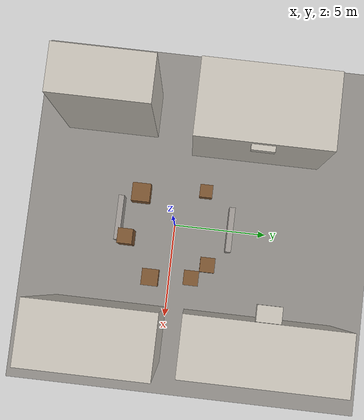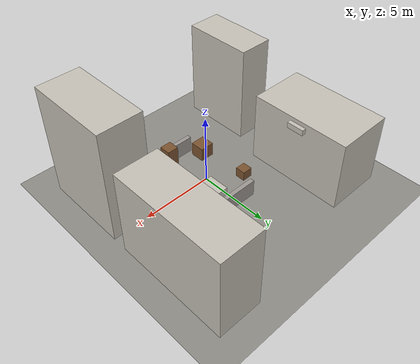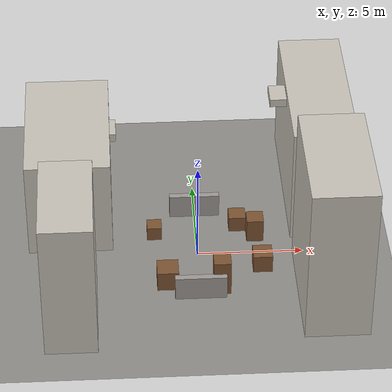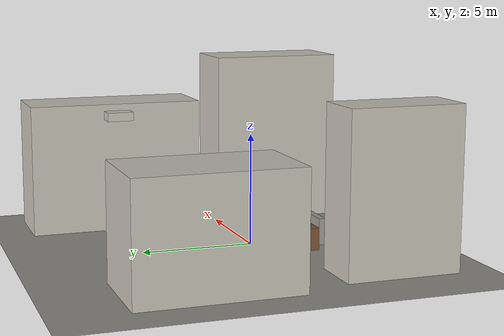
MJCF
<mujoco model="scene_urban">

  <include file="common_assets.xml"/>

  <option gravity="0 0 -9.81"/>

  <visual>
    <headlight ambient="0.3 0.3 0.32" diffuse="0.45 0.45 0.42" specular="0.1 0.1 0.1"/>
    <rgba haze="0.55 0.55 0.58 1"/>
  </visual>

  <worldbody>
    <light name="key_light" pos="5 -4 7" dir="-0.4 0.35 -1" diffuse="0.75 0.72 0.65" specular="0.2 0.2 0.2" castshadow="true"/>
    <light name="fill_light" pos="-5 3 6" dir="0.4 -0.25 -1" diffuse="0.28 0.28 0.3" castshadow="false"/>

    <geom name="street_floor" type="plane" size="30 30 0.1" material="mat_concrete" pos="0 0 0"/>

    <!-- Building-like blocks lining two rough "street" edges, closer spacing
         than warehouse walls -> real occlusion risk during following -->
    <geom name="building_01" type="box" size="1.5 4 3" pos="6 5 3" material="mat_wall"/>
    <geom name="building_02" type="box" size="1.5 3 4" pos="6 -3 4" material="mat_wall"/>
    <geom name="building_03" type="box" size="2 3.5 2.5" pos="-6 4 2.5" material="mat_wall"/>
    <geom name="building_04" type="box" size="1.2 2.5 3.5" pos="-6 -4 3.5" material="mat_wall"/>

    <!-- Dense low/mid clutter between the "buildings": deliberately closer
         together than the other 2 scenes -->
    <geom name="crate_01" type="box" size="0.4 0.4 0.4" pos="2 2 0.4" material="mat_crate"/>
    <geom name="crate_02" type="box" size="0.4 0.4 0.6" pos="2.8 1.2 0.6" material="mat_crate"/>
    <geom name="crate_03" type="box" size="0.35 0.35 0.35" pos="-2 1.5 0.35" material="mat_crate"/>
    <geom name="crate_04" type="box" size="0.5 0.5 0.5" pos="-1.5 -2 0.5" material="mat_crate"/>
    <geom name="crate_05" type="box" size="0.4 0.4 0.9" pos="1 -2.5 0.9" material="mat_crate"/>
    <geom name="crate_06" type="box" size="0.45 0.45 0.45" pos="3 -1 0.45" material="mat_crate"/>
    <geom name="barrier_01" type="box" size="1.2 0.15 0.6" pos="0 3 0.6" material="mat_concrete_block"/>
    <geom name="barrier_02" type="box" size="1.2 0.15 0.6" pos="0 -3 0.6" material="mat_concrete_block"/>

    <!-- A couple of overhanging elements at moderate height: tag-occlusion
         hazard if the drone follows too close to a building edge, which is
         exactly the robustness case this scene is for -->
    <geom name="overhang_01" type="box" size="0.8 0.6 0.2" pos="4.5 5 5.5" material="mat_wall"/>
    <geom name="overhang_02" type="box" size="0.8 0.6 0.2" pos="-4.5 4 4.5" material="mat_wall"/>
  </worldbody>
</mujoco>

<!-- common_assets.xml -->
<mujoco model="common_assets">

  <asset>
    <!-- Skybox: gradient sky, shared by outdoor-facing scenes -->
    <texture name="sky_gradient" type="skybox" builtin="gradient"
             rgb1="0.45 0.62 0.85" rgb2="0.9 0.95 1.0" width="512" height="512"/>

    <!-- Ground textures -->
    <texture name="floor_checker" type="2d" builtin="checker"
              rgb1="0.55 0.55 0.58" rgb2="0.35 0.35 0.38"
              width="512" height="512" mark="edge" markrgb="0.2 0.2 0.2"/>
    <material name="mat_floor_checker" texture="floor_checker"
              texrepeat="12 12" reflectance="0.05" specular="0.1" shininess="0.05"/>

    <texture name="ground_concrete" type="2d" builtin="flat" rgb1="0.56 0.55 0.53"
              width="512" height="512"/>
    <material name="mat_concrete" texture="ground_concrete"
              texrepeat="10 10" reflectance="0.03" specular="0.05" shininess="0.02"/>

    <texture name="ground_grass" type="2d" builtin="checker" rgb1="0.22 0.4 0.16" rgb2="0.26 0.44 0.18"
              width="256" height="256"/>
    <material name="mat_grass" texture="ground_grass"
              texrepeat="24 24" reflectance="0.0" specular="0.02" shininess="0.01"/>

    <!-- Wall / panel texture (warehouse interior) -->
    <texture name="wall_panel" type="2d" builtin="flat" rgb1="0.78 0.76 0.72"
              width="256" height="256"/>
    <material name="mat_wall" texture="wall_panel" texrepeat="4 2"
              reflectance="0.02" specular="0.05" shininess="0.02"/>

    <!-- Crate / prop textures -->
    <texture name="crate_wood" type="2d" builtin="checker" rgb1="0.55 0.38 0.22" rgb2="0.42 0.28 0.16"
              width="128" height="128" mark="cross" markrgb="0.3 0.2 0.1"/>
    <material name="mat_crate" texture="crate_wood" texrepeat="2 2"
              reflectance="0.02" specular="0.1" shininess="0.05"/>

    <material name="mat_concrete_block" rgba="0.62 0.6 0.58 1" reflectance="0.03"/>
  </asset>

</mujoco>
